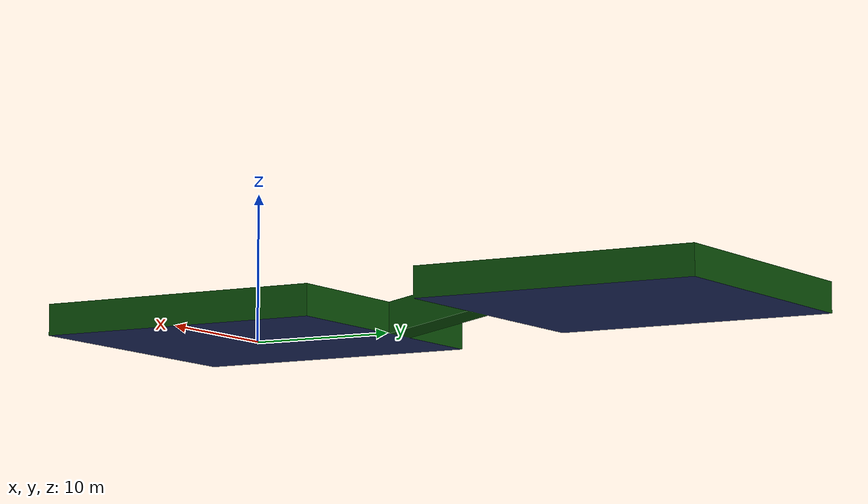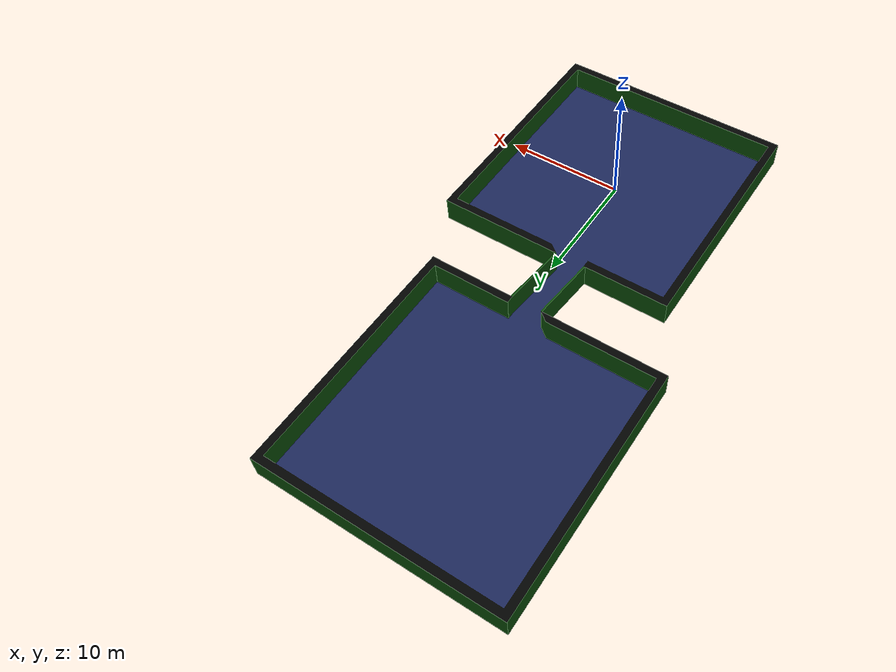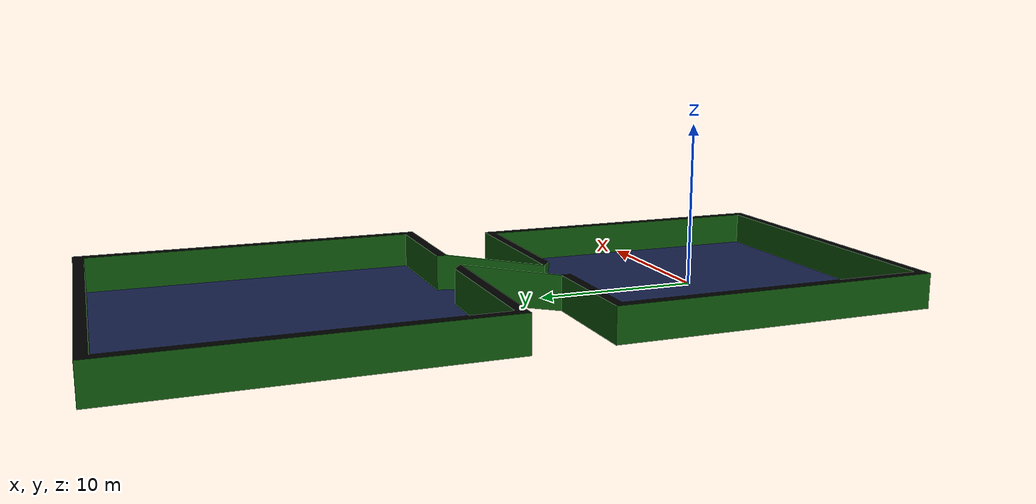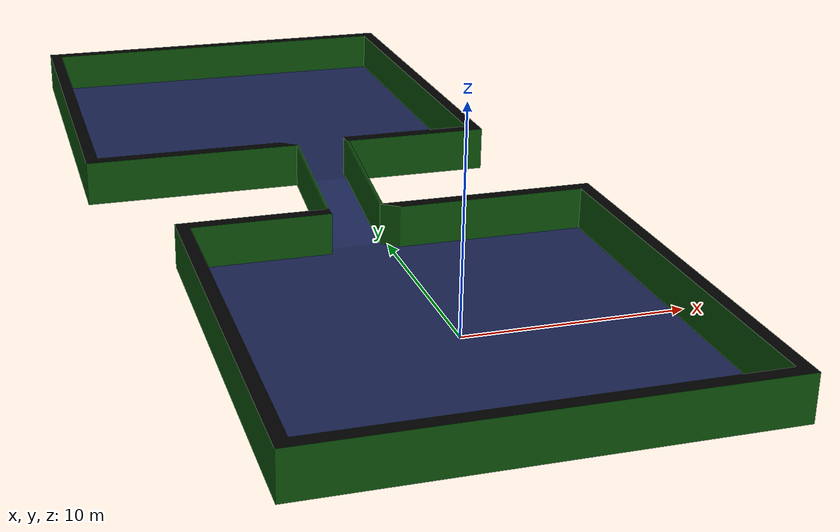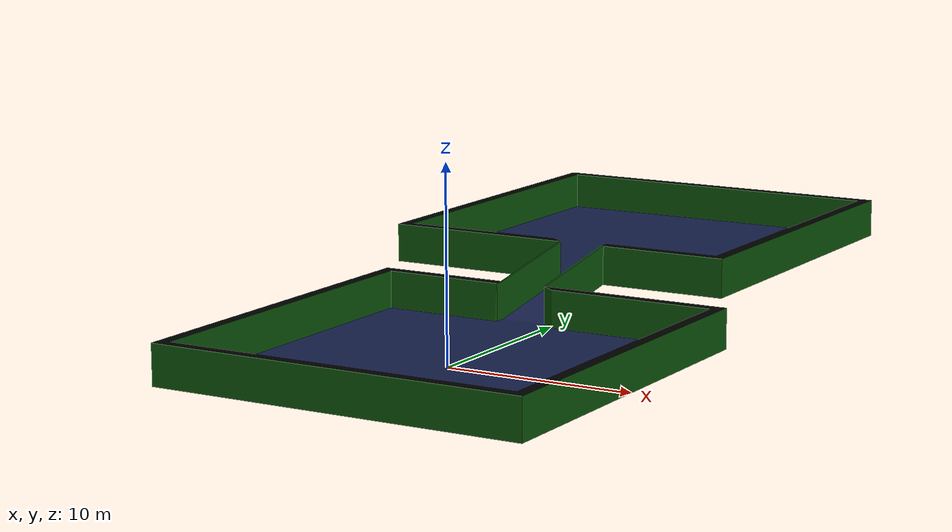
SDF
<?xml version="1.0" ?>
<sdf version="1.5">
  <model name="Two-levels">
    <static>true</static>
    <pose>0 0 0 0 0 0</pose>
    <link name="link">
      <collision name="collision">
        <geometry>
          <mesh>
            <uri>model://Two-levels/Two-levels.dae</uri>
            <scale>1 1 1</scale>
          </mesh>
        </geometry>
      </collision>
      <visual name="visual">
        <geometry>
          <mesh>
            <uri>model://Two-levels/Two-levels.dae</uri>
            <scale>1 1 1</scale>
          </mesh>
        </geometry>
        <cast_shadows>false</cast_shadows>
        <material>
        </material>
      </visual>
    </link>
  </model>
</sdf>
